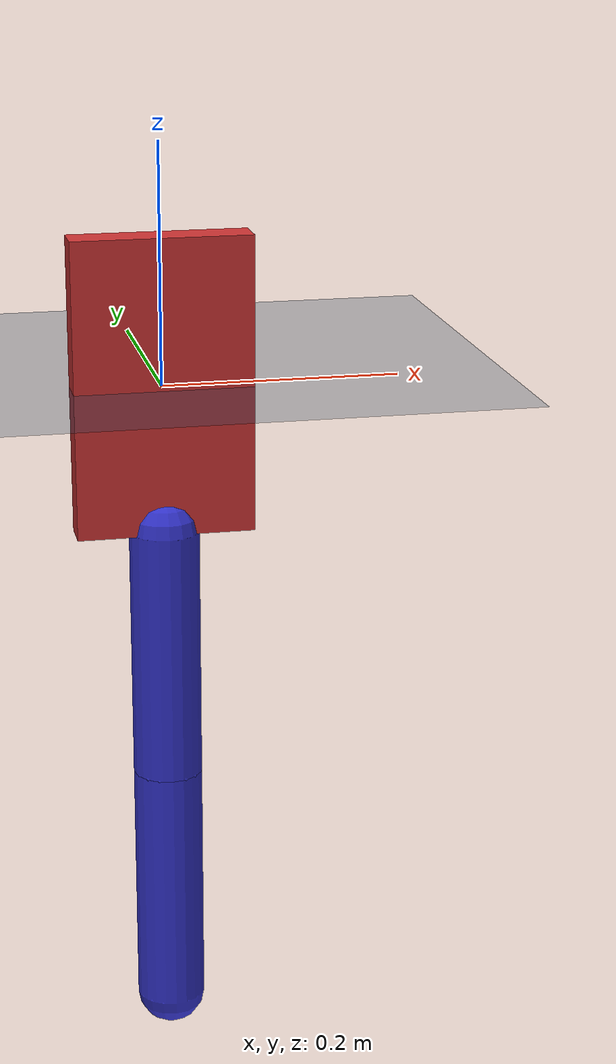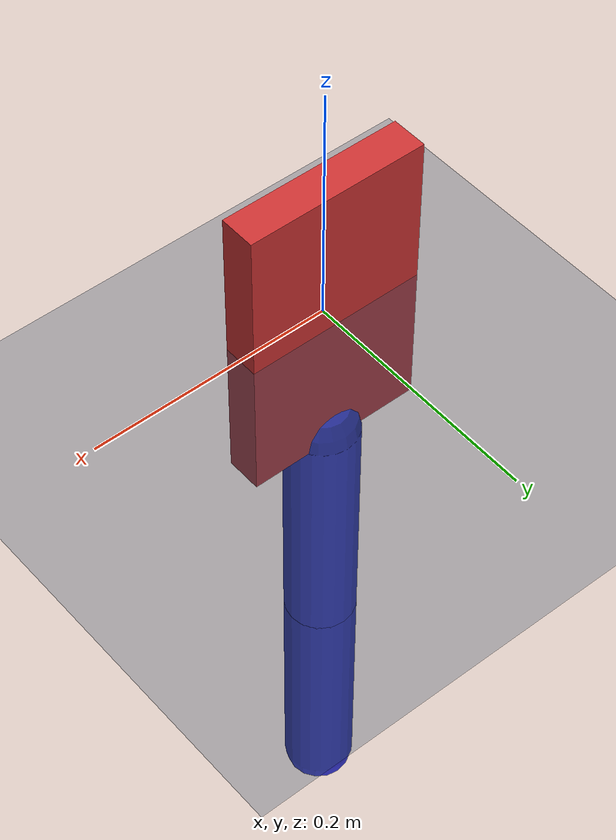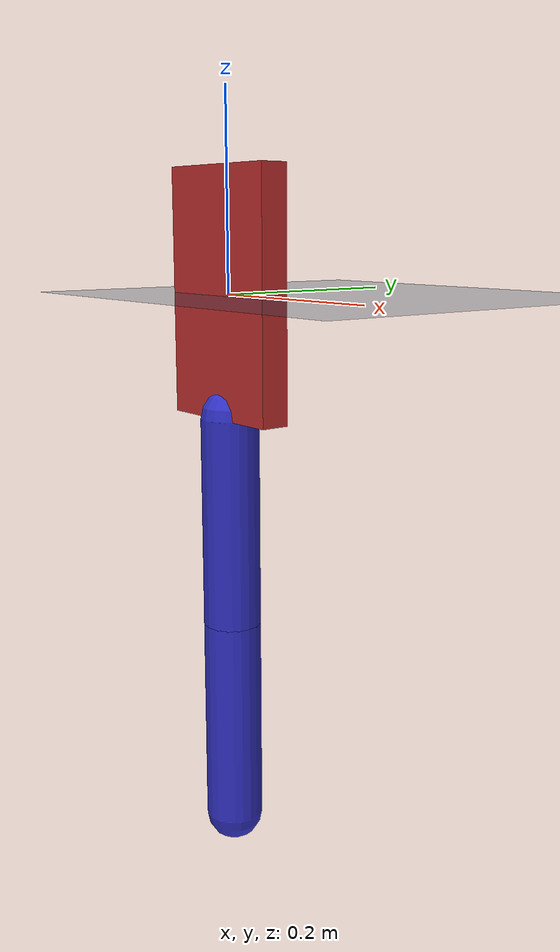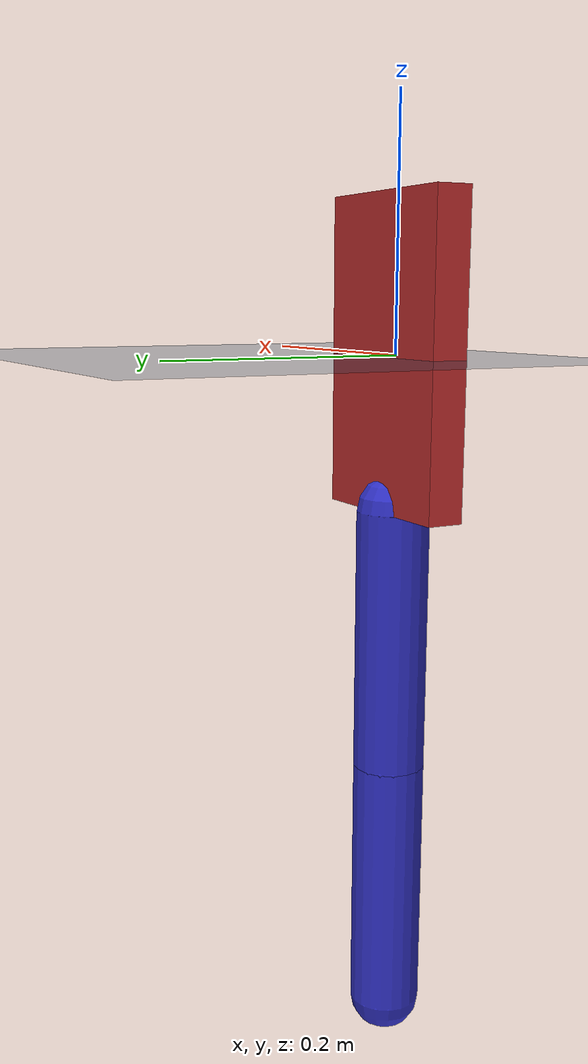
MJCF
<mujoco model="biped">
  <compiler angle="radian"/>

  <option timestep="0.0001" gravity="0 0 -9.81"/>

  <asset>
    <texture type="2d" name="groundplane" builtin="checker" mark="edge" rgb1="0.2 0.3 0.4" rgb2="0.1 0.2 0.3" markrgb="0.8 0.8 0.8" width="300" height="300"/>
    <material name="groundplane" texture="groundplane" texuniform="true" texrepeat="5 5" reflectance="0.2"/>
  </asset>

  <worldbody>
    <light pos="0 0 1.5" dir="0 0 -1" directional="true"/>
    <!-- Friction is 0.7 -->
    <geom name="floor"
          size="0 0 0.1"
          type="plane"
          material="groundplane"
          friction="0.7 0 0"
          solref="-100000 -1000"
          condim="3"
    />

    <body name="trunk">
      <joint name="slide_x" type="slide" axis="1 0 0" />
      <joint name="slide_z" type="slide" axis="0 0 1" />
      <joint name="rotate_y" type="hinge" axis="0 1 0" />
      <geom name="trunk_geom" type="box" size="0.075 0.015 0.125" rgba="0.8 0.2 0.2 1" density="7111"/>

      <!-- Left Leg -->
      <body name="left_thigh" pos="0 0 -0.125">
        <inertial pos="0 0 -0.11" mass="0.25" diaginertia="0.0010083 0.0010083 1e-6"/>
        <joint name="left_hip" type="hinge" axis="0 1 0"/>
        <geom name="left_thigh_geom" fromto="0 0 0 0 0 -0.22" type="capsule" size="0.03" rgba="0.2 0.2 0.8 1"/>
        <body name="left_shin" pos="0 0 -0.22">
          <inertial pos="0 0 -0.11" mass="0.25" diaginertia="0.0010083 0.0010083 1e-6"/>
          <joint name="left_knee" type="hinge" axis="0 1 0"/>
          <geom name="left_shin_geom" fromto="0 0 0 0 0 -0.22" type="capsule" size="0.03" rgba="0.2 0.2 0.8 1"/>
          <!-- Added Site for QP Control -->
          <site name="left_foot" pos="0 0 -0.22" size="0.02" rgba="1 0 0 1"/>
        </body>
      </body>

      <!-- Right Leg -->
      <body name="right_thigh" pos="0 0 -0.125">
        <inertial pos="0 0 -0.11" mass="0.25" diaginertia="0.0010083 0.0010083 1e-6"/>
        <joint name="right_hip" type="hinge" axis="0 1 0"/>
        <geom name="right_thigh_geom" fromto="0 0 0 0 0 -0.22" type="capsule" size="0.03" rgba="0.2 0.2 0.8 1"/>
        <body name="right_shin" pos="0 0 -0.22">
          <inertial pos="0 0 -0.11" mass="0.25" diaginertia="0.0010083 0.0010083 1e-6"/>
          <joint name="right_knee" type="hinge" axis="0 1 0"/>
          <geom name="right_shin_geom" fromto="0 0 0 0 0 -0.22" type="capsule" size="0.03" rgba="0.2 0.2 0.8 1"/>
          <!-- Added Site for QP Control -->
          <site name="right_foot" pos="0 0 -0.22" size="0.02" rgba="1 0 0 1"/>
        </body>
      </body>

    </body>
  </worldbody>

  <contact>
    <exclude body1="left_thigh" body2="right_thigh"/>
    <exclude body1="left_thigh" body2="right_shin"/>
    <exclude body1="left_shin" body2="right_thigh"/>
    <exclude body1="left_shin" body2="right_shin"/>
  </contact>

  <actuator>
    <!-- Explicit gears to ensure 1:1 torque mapping -->
    <motor name="left_hip" joint="left_hip" gear="1"/>
    <motor name="left_knee" joint="left_knee" gear="1"/>
    <motor name="right_hip" joint="right_hip" gear="1"/>
    <motor name="right_knee" joint="right_knee" gear="1"/>
  </actuator>

  <keyframe>
    <key name="initial"
         qpos="0 0.455 0 1.0472 -1.5708 0.523598776 -1.5708"
         qvel="0 0 0 0 0 0 0" />
  </keyframe>

</mujoco>
